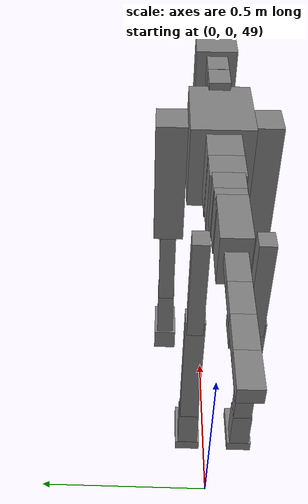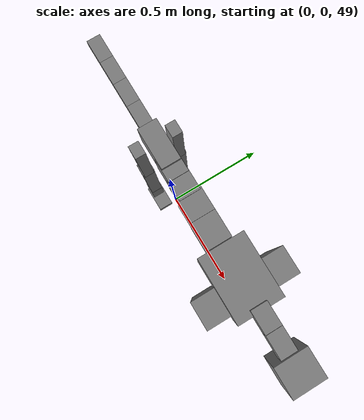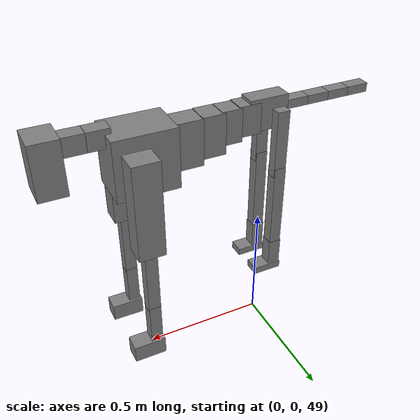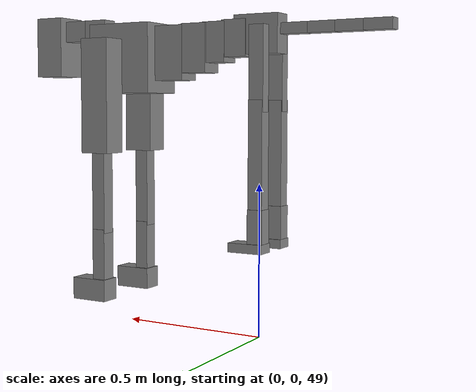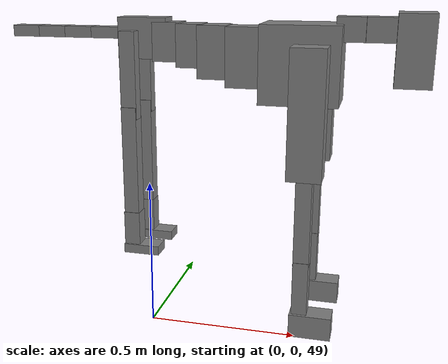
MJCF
<mujoco model="dog">

    <default>
        <joint armature="0.02" stiffness="1" damping="0.2" limited="true"/>
        <geom condim="3" friction="1 0.05 0.05" margin="0.01"/>
        <motor ctrllimited="true" ctrlrange="-1.0 1.0" forcelimited="true" gear="50"/>
    </default>

    <compiler inertiafromgeom="true" angle="radian"/>

    <option timestep="0.016" iterations="50" tolerance="1e-10" solver="Newton" jacobian="dense" cone="pyramidal"/>

    <size nconmax="20000" njmax="60000" nstack="5000000"/>
    <visual>
        <map force="0.1" zfar="30"/>
        <rgba haze="0.15 0.25 0.35 1"/>
        <quality shadowsize="2048"/>
        <global offwidth="800" offheight="800"/>
    </visual>

    <asset>
        <texture type="skybox" builtin="gradient" rgb1="0.3 0.5 0.7" rgb2="0 0 0" width="512" height="512"/>
        <texture name="texplane" type="2d" builtin="checker" rgb1=".2 .3 .4" rgb2=".1 0.15 0.2" width="512" height="512"
                 mark="cross" markrgb=".8 .8 .8"/>
        <texture name="texgeom" type="cube" builtin="flat" mark="cross" width="127" height="1278" rgb1="0.8 0.6 0.4"
                 rgb2="0.8 0.6 0.4" markrgb="1 1 1" random="0.01"/>

        <material name="matplane" reflectance="0.3" texture="texplane" texrepeat="1 1" texuniform="true"/>
        <material name="matgeom" texture="texgeom" texuniform="true" rgba="0.8 0.6 .4 1"/>
    </asset>

    <worldbody>
        <geom name="floor" pos="0 0 0" size="0 0 .25" type="plane" material="matplane" condim="3"/>

        <light directional="false" diffuse=".2 .2 .2" specular="0 0 0" pos="0 0 5" dir="0 0 -1" castshadow="false"/>
        <light mode="targetbodycom" target="torso" directional="false" diffuse=".8 .8 .8" specular="0.3 0.3 0.3"
               pos="0 0 4.0" dir="0 0 -1"/>

        <body name="root" pos="0 0 50">
            <freejoint name="root_1"/>
            <geom type="box" pos="0 0 -0.02" size="0.0774  0.0358  0.063" density="2030"/>

            <body name="spine1" pos="0.054 0 0">
                <joint name="spine1_y" axis="0 1 0" range="0 0.7" limited="true"/>
                <geom type="box" pos="0.02375 0 -0.03" size="0.04375  0.0375  0.05985" density="2030"/>

                <body name="spine2" pos="0.0612 0 0">
                    <joint name="spine2_y" axis="0 1 0" range="-0.15 0.15" limited="true"/>
                    <geom type="box" pos="0.03555  0  -0.04" size="0.04055  0.039  0.06615" density="2030"/>

                    <body name="spine3" pos="0.0730 0 0">
                        <joint name="spine3_y" axis="0 1 0" range="-0.15 0.15" limited="true"/>
                        <geom type="box" pos="0.03555  0  -0.057" size="0.04555  0.0445  0.081" density="2030"/>

                        <body name="spine4" pos="0.0780 0 0">
                            <joint name="spine4_y" axis="0 1 0" range="-0.15 0.15" limited="true"/>
                            <geom type="box" pos="0.05265  0  -0.07" size="0.05265  0.045  0.09135" density="2030"/>

                            <body name="torso" pos="0.1082 0 0">
                                <joint name="torso_y" axis="0 1 0" range="-0.15 0.15" limited="true"/>
                                <geom type="box" pos="0.11925  0  -0.085" size="0.11925  0.085  0.11745"
                                      density="2030"/>

                                <body name="neck1" pos="0.2160  0   0.0180">
                                    <joint name="neck1_y" axis="0 1 0" range="-1.2  -1" limited="true"/>
                                    <geom type="box" pos="0.0423  0  0" size="0.0423  0.03  0.036" density="2325"/>

                                    <body name="neck2" pos="0.0853  0  0">
                                        <joint name="neck2_y" axis="0 1 0" range="0.1  0" limited="true"/>
                                        <geom type="box" pos="0.0423  0  0" size="0.0423  0.03  0.036" density="2325"/>

                                        <body name="head" pos="0.0853  0  0">
                                            <joint name="head_y" axis="0 1 0" range="-0.3  -0.2" limited="true"/>
                                            <geom type="box" pos="0.0531  0  -0.055" size="0.0531  0.06  0.1044"
                                                  density="4030"/>

                                        </body>
                                    </body>
                                </body>

                                <body name="front_shoulder" pos="0.156  0   -0.0480">
                                    <joint name="front_shoulder_y" axis="0 1 0" range="-1 1.5" limited="true"/>
                                    <geom type="box" pos="0 0.13 -0.1651" size="0.0519  0.0444  0.1918" density="1158"/>
                                    <geom type="box" pos="0 -0.13 -0.1651" size="0.0519  0.0444  0.1918"
                                          density="1158"/>

                                    <body name="front_elbow" pos="0  0  -0.3303">
                                        <joint name="front_elbow_y" axis="0 1 0" range="-2 0" limited="true"/>
                                        <geom type="box" pos="0 0.13 -0.1494" size="0.0241  0.0247  0.1494"
                                              density="1081"/>
                                        <geom type="box" pos="0 -0.13 -0.1494" size="0.0241  0.0247  0.1494"
                                              density="1081"/>

                                        <body name="front_wrist" pos="0  0  -0.2989">
                                            <joint name="front_wrist_y" axis="0 1 0" range="-0.2 0" limited="true"/>
                                            <geom type="box" pos="0 0.13 -0.0862" size="0.0235  0.0261  0.0993"
                                                  density="1664"/>
                                            <geom type="box" pos="0 -0.13 -0.0862" size="0.0235  0.0261  0.0993"
                                                  density="1664"/>

                                            <body name="front_finger_end" pos="0  0  -0.1723">
                                                <joint name="front_finger_y" axis="0 1 0" range="-0.4 1"
                                                       limited="true"/>
                                                <geom type="box" pos="0.0352  0.13  -0.0219"
                                                      size="0.0646  0.0352  0.0369" density="1515"/>
                                                <geom type="box" pos="0.0352  -0.13  -0.0219"
                                                      size="0.0646  0.0352  0.0369" density="1515"/>

                                            </body>

                                        </body>
                                    </body>
                                </body>

                            </body>
                        </body>
                    </body>
                </body>
            </body>

            <body name="back_hip" pos="-0.03 0 -0.018">
                <joint name="back_hip_y" axis="0 1 0" range="-1.5 0.3" limited="true"/>
                <geom type="box" pos="0 0.07 -0.1127" size="0.0249  0.0195  0.1355" density="1154"/>
                <geom type="box" pos="0 -0.07 -0.1127" size="0.0249  0.0195  0.1355" density="1154"/>

                <body name="back_knee" pos="0  0  -0.2254">
                    <joint name="back_knee_y" axis="0 1 0" range="0 2.8" limited="true"/>
                    <geom type="box" pos="0 0.07 -0.1700" size="0.0239  0.0236  0.1856" density="1227"/>
                    <geom type="box" pos="0 -0.07 -0.1700" size="0.0239  0.0236  0.1856" density="1227"/>

                    <body name="back_ankle" pos="0  0  -0.3400">
                        <joint name="back_ankle_y" axis="0 1 0" range="-2.2 0" limited="true"/>
                        <geom type="box" pos="0 0.07 -0.0560" size="0.0256  0.0256  0.0673" density="1284"/>
                        <geom type="box" pos="0 -0.07 -0.0560" size="0.0256  0.0256  0.0673" density="1284"/>

                        <body name="back_toe_end" pos="0  0  -0.1121">
                            <joint name="back_toe_y" axis="0 1 0" range="-0.4 1" limited="true"/>
                            <geom type="box" pos="0.0319  0.07  0.0000" size="0.0585  0.0319  0.0150" density="1515"/>
                            <geom type="box" pos="0.0319  -0.07  0.0000" size="0.0585  0.0319  0.0150" density="1515"/>

                        </body>
                    </body>
                </body>
            </body>

            <body name="tail1" pos="-0.074 0 -0.006">
                <joint name="tail1_y" axis="0 1 0" range="-0.2 0.2" limited="true"/>
                <geom type="box" pos="-0.0536  0  0" size="0.045  0.025  0.0175" density="1587"/>

                <body name="tail2" pos="-0.09 0 0">
                    <joint name="tail2_y" axis="0 1 0" range="-0.2 0.2" limited="true"/>
                    <geom type="box" pos="-0.0536  0  0" size="0.045  0.025  0.0175" density="1587"/>

                    <body name="tail3" pos="-0.09 0 0">
                        <joint name="tail3_y" axis="0 1 0" range="-0.2 0.2" limited="true"/>
                        <geom type="box" pos="-0.0536  0  0" size="0.045  0.025  0.0175" density="1587"/>

                        <body name="tail4" pos="-0.09 0 0">
                            <joint name="tail4_y" axis="0 1 0" range="-0.2 0.2" limited="true"/>
                            <geom type="box" pos="-0.0536  0  0" size="0.045  0.025  0.0175" density="1587"/>

                        </body>
                    </body>
                </body>
            </body>
        </body>
    </worldbody>

    <actuator>
        <motor joint="spine1_y" forcerange="-150 150     "/>
        <motor joint="spine2_y" forcerange="-150 150     "/>
        <motor joint="spine3_y" forcerange="-150 150     "/>
        <motor joint="spine4_y" forcerange="-150 150     "/>
        <motor joint="torso_y" forcerange="-150 150     "/>
        <motor joint="neck1_y" forcerange="-100 100       "/>
        <motor joint="neck2_y" forcerange="-100 100       "/>
        <motor joint="head_y" forcerange="-150 150       "/>
        <motor joint="front_shoulder_y" forcerange="-196.44 199.44"/>
        <motor joint="front_elbow_y" forcerange="-148.87 130.40"/>
        <motor joint="front_wrist_y" forcerange="-92.61 116.05"/>
        <motor joint="front_finger_y" forcerange="-73.83 74.01"/>
        <motor joint="back_hip_y" forcerange="-208.55 251.45"/>
        <motor joint="back_knee_y" forcerange="-293.84 249.48"/>
        <motor joint="back_angle_y" forcerange="-126.21 183.48"/>
        <motor joint="back_toe_y" forcerange="-126.63 48.81"/>
        <motor joint="tail1_y" forcerange="-50 50     "/>
        <motor joint="tail2_y" forcerange="-50 50     "/>
        <motor joint="tail3_y" forcerange="-50 50     "/>
        <motor joint="tail4_y" forcerange="-50 50     "/>
    </actuator>
</mujoco>
